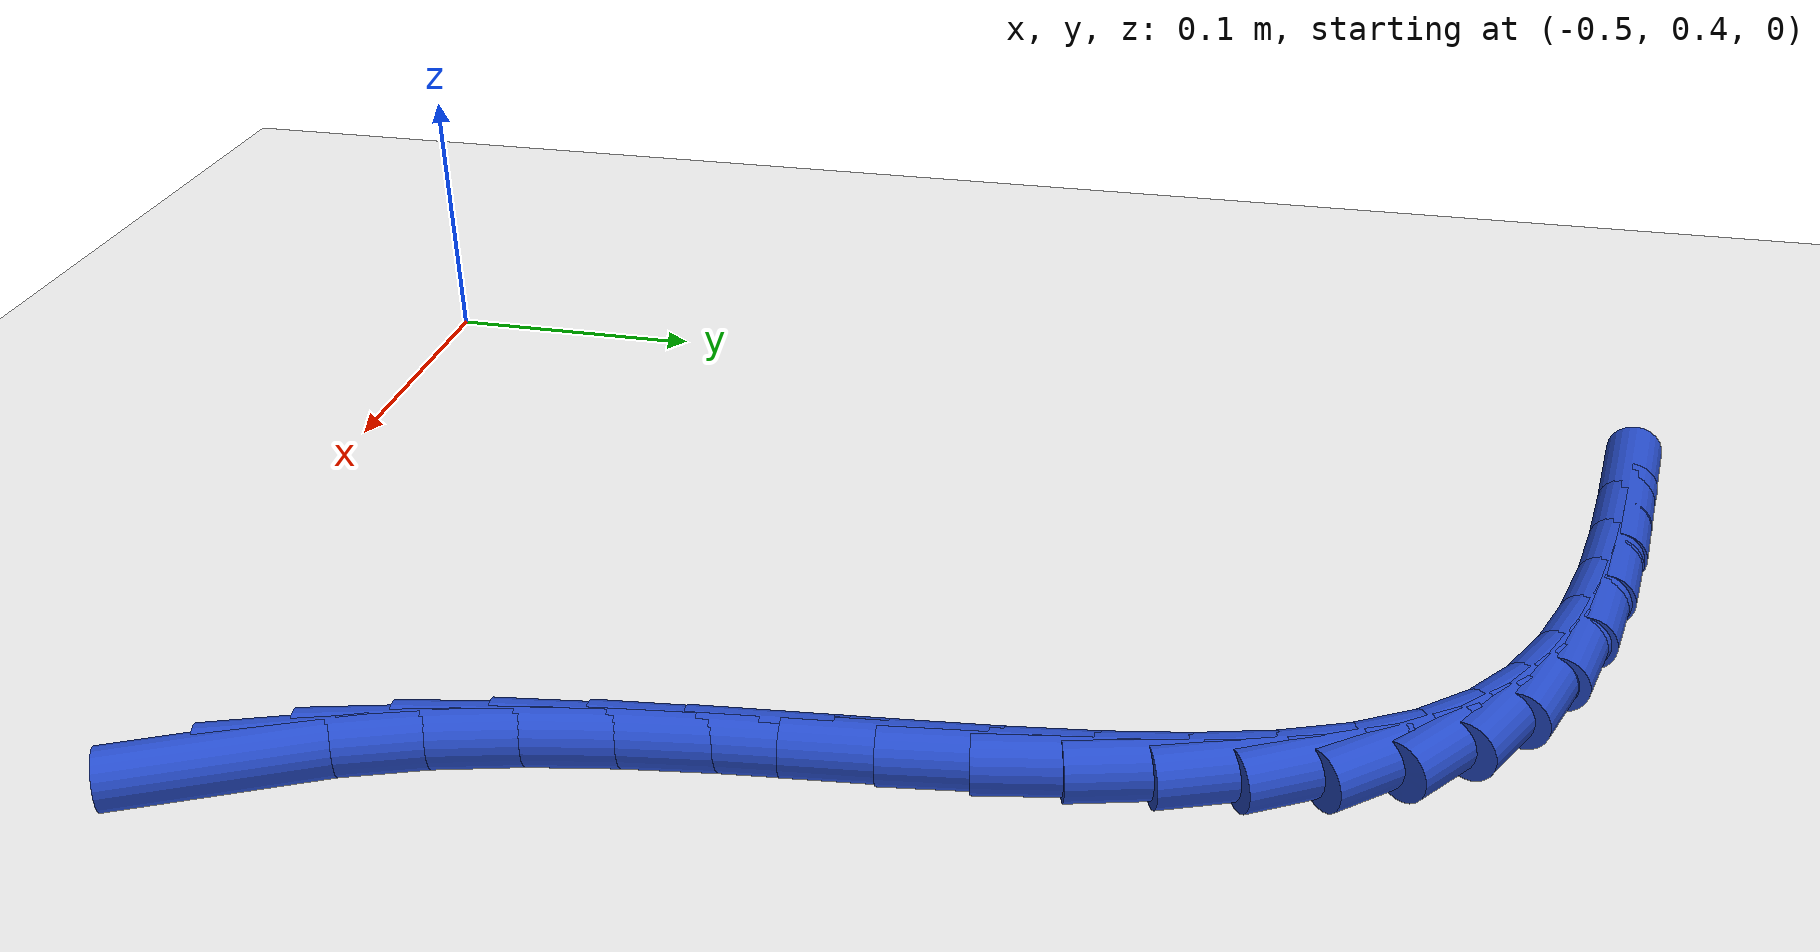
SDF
<sdf version="1.6">
 <world name="default">
  <model name="ground_plane">
   <static>1</static>
   <link name="link">
    <collision name="collision">
     <geometry><plane><normal>0 0 1</normal><size>100 100</size></plane></geometry>
     <surface><friction><ode><mu>100</mu><mu2>50</mu2></ode></friction></surface>
    </collision>
    <visual name="visual">
     <cast_shadows>0</cast_shadows>
     <geometry><plane><normal>0 0 1</normal><size>100 100</size></plane></geometry>
     <material>
      <script><uri>file://media/materials/scripts/gazebo.material</uri><name>Gazebo/WhiteGlow</name></script>
     </material>
    </visual>
   </link>
  </model>
  <model name="line">
   <link name="link_19">
    <pose>-0.1899447937633684 0.46087078451490565 0.01 0 1.57 -1.1296318845937405</pose>
    <collision name="collision">
     <geometry><cylinder><radius>0.01</radius><length>0.08</length></cylinder></geometry>
    </collision>
    <visual name="visual">
     <material>
      <script><name>Gazebo/Blue</name><uri>file://media/materials/scripts/gazebo.material</uri></script>
     </material>
     <geometry><cylinder><radius>0.01</radius><length>0.08</length></cylinder></geometry>
    </visual>
   </link>
   <link name="link_20">
    <pose>-0.20176930439272714 0.48591189994079254 0.01 0 1.57 -1.2389800258527615</pose>
    <collision name="collision">
     <geometry><cylinder><radius>0.01</radius><length>0.08</length></cylinder></geometry>
    </collision>
    <visual name="visual">
     <material>
      <script><name>Gazebo/Blue</name><uri>file://media/materials/scripts/gazebo.material</uri></script>
     </material>
     <geometry><cylinder><radius>0.01</radius><length>0.08</length></cylinder></geometry>
    </visual>
   </link>
   <link name="link_21">
    <pose>-0.2109489104038942 0.5125537769497239 0.01 0 1.57 -1.332416247217029</pose>
    <collision name="collision">
     <geometry><cylinder><radius>0.01</radius><length>0.08</length></cylinder></geometry>
    </collision>
    <visual name="visual">
     <material>
      <script><name>Gazebo/Blue</name><uri>file://media/materials/scripts/gazebo.material</uri></script>
     </material>
     <geometry><cylinder><radius>0.01</radius><length>0.08</length></cylinder></geometry>
    </visual>
   </link>
   <link name="link_22">
    <pose>-0.21775477456855927 0.5405613965239663 0.01 0 1.57 -1.4019504774807319</pose>
    <collision name="collision">
     <geometry><cylinder><radius>0.01</radius><length>0.08</length></cylinder></geometry>
    </collision>
    <visual name="visual">
     <material>
      <script><name>Gazebo/Blue</name><uri>file://media/materials/scripts/gazebo.material</uri></script>
     </material>
     <geometry><cylinder><radius>0.01</radius><length>0.08</length></cylinder></geometry>
    </visual>
   </link>
   <link name="link_23">
    <pose>-0.2226952458456503 0.5695430543763235 0.01 0 1.57 -1.4501635242684614</pose>
    <collision name="collision">
     <geometry><cylinder><radius>0.01</radius><length>0.08</length></cylinder></geometry>
    </collision>
    <visual name="visual">
     <material>
      <script><name>Gazebo/Blue</name><uri>file://media/materials/scripts/gazebo.material</uri></script>
     </material>
     <geometry><cylinder><radius>0.01</radius><length>0.08</length></cylinder></geometry>
    </visual>
   </link>
   <link name="link_24">
    <pose>-0.22627900726049407 0.599106825535232 0.01 0 1.57 -1.4791088921758047</pose>
    <collision name="collision">
     <geometry><cylinder><radius>0.01</radius><length>0.08</length></cylinder></geometry>
    </collision>
    <visual name="visual">
     <material>
      <script><name>Gazebo/Blue</name><uri>file://media/materials/scripts/gazebo.material</uri></script>
     </material>
     <geometry><cylinder><radius>0.01</radius><length>0.08</length></cylinder></geometry>
    </visual>
   </link>
   <link name="link_25">
    <pose>-0.229014741838417 0.6288607850291282 0.01 0 1.57 -1.4898833328625558</pose>
    <collision name="collision">
     <geometry><cylinder><radius>0.01</radius><length>0.08</length></cylinder></geometry>
    </collision>
    <visual name="visual">
     <material>
      <script><name>Gazebo/Blue</name><uri>file://media/materials/scripts/gazebo.material</uri></script>
     </material>
     <geometry><cylinder><radius>0.01</radius><length>0.08</length></cylinder></geometry>
    </visual>
   </link>
   <link name="link_26">
    <pose>-0.2314111326047456 0.658413007886449 0.01 0 1.57 -1.4824270266286634</pose>
    <collision name="collision">
     <geometry><cylinder><radius>0.01</radius><length>0.08</length></cylinder></geometry>
    </collision>
    <visual name="visual">
     <material>
      <script><name>Gazebo/Blue</name><uri>file://media/materials/scripts/gazebo.material</uri></script>
     </material>
     <geometry><cylinder><radius>0.01</radius><length>0.08</length></cylinder></geometry>
    </visual>
   </link>
   <link name="link_27">
    <pose>-0.23397686258480666 0.6873715691356306 0.01 0 1.57 -1.4553517194785355</pose>
    <collision name="collision">
     <geometry><cylinder><radius>0.01</radius><length>0.08</length></cylinder></geometry>
    </collision>
    <visual name="visual">
     <material>
      <script><name>Gazebo/Blue</name><uri>file://media/materials/scripts/gazebo.material</uri></script>
     </material>
     <geometry><cylinder><radius>0.01</radius><length>0.08</length></cylinder></geometry>
    </visual>
   </link>
   <link name="link_28">
    <pose>-0.2372206148039265 0.7153445438051097 0.01 0 1.57 -1.4057251979546244</pose>
    <collision name="collision">
     <geometry><cylinder><radius>0.01</radius><length>0.08</length></cylinder></geometry>
    </collision>
    <visual name="visual">
     <material>
      <script><name>Gazebo/Blue</name><uri>file://media/materials/scripts/gazebo.material</uri></script>
     </material>
     <geometry><cylinder><radius>0.01</radius><length>0.08</length></cylinder></geometry>
    </visual>
   </link>
   <link name="link_29">
    <pose>-0.2416510722874317 0.7419400069233227 0.01 0 1.57 -1.3288779182609405</pose>
    <collision name="collision">
     <geometry><cylinder><radius>0.01</radius><length>0.08</length></cylinder></geometry>
    </collision>
    <visual name="visual">
     <material>
      <script><name>Gazebo/Blue</name><uri>file://media/materials/scripts/gazebo.material</uri></script>
     </material>
     <geometry><cylinder><radius>0.01</radius><length>0.08</length></cylinder></geometry>
    </visual>
   </link>
   <link name="link_30">
    <pose>-0.24777691806064892 0.7667660335187063 0.01 0 1.57 -1.218591786880306</pose>
    <collision name="collision">
     <geometry><cylinder><radius>0.01</radius><length>0.08</length></cylinder></geometry>
    </collision>
    <visual name="visual">
     <material>
      <script><name>Gazebo/Blue</name><uri>file://media/materials/scripts/gazebo.material</uri></script>
     </material>
     <geometry><cylinder><radius>0.01</radius><length>0.08</length></cylinder></geometry>
    </visual>
   </link>
   <link name="link_31">
    <pose>-0.25610683514890464 0.7894306986196973 0.01 0 1.57 -1.0686629468953663</pose>
    <collision name="collision">
     <geometry><cylinder><radius>0.01</radius><length>0.08</length></cylinder></geometry>
    </collision>
    <visual name="visual">
     <material>
      <script><name>Gazebo/Blue</name><uri>file://media/materials/scripts/gazebo.material</uri></script>
     </material>
     <geometry><cylinder><radius>0.01</radius><length>0.08</length></cylinder></geometry>
    </visual>
   </link>
   <link name="link_32">
    <pose>-0.26714950657752545 0.8095420772547315 0.01 0 1.57 -0.8778828394717879</pose>
    <collision name="collision">
     <geometry><cylinder><radius>0.01</radius><length>0.08</length></cylinder></geometry>
    </collision>
    <visual name="visual">
     <material>
      <script><name>Gazebo/Blue</name><uri>file://media/materials/scripts/gazebo.material</uri></script>
     </material>
     <geometry><cylinder><radius>0.01</radius><length>0.08</length></cylinder></geometry>
    </visual>
   </link>
   <link name="link_33">
    <pose>-0.2814066606128743 0.8267142812399378 0.01 0 1.57 -0.6769066921869799</pose>
    <collision name="collision">
     <geometry><cylinder><radius>0.01</radius><length>0.08</length></cylinder></geometry>
    </collision>
    <visual name="visual">
     <material>
      <script><name>Gazebo/Blue</name><uri>file://media/materials/scripts/gazebo.material</uri></script>
     </material>
     <geometry><cylinder><radius>0.01</radius><length>0.08</length></cylinder></geometry>
    </visual>
   </link>
   <link name="link_34">
    <pose>-0.29902377279542647 0.8408706526727773 0.01 0 1.57 -0.5096522520865737</pose>
    <collision name="collision">
     <geometry><cylinder><radius>0.01</radius><length>0.08</length></cylinder></geometry>
    </collision>
    <visual name="visual">
     <material>
      <script><name>Gazebo/Blue</name><uri>file://media/materials/scripts/gazebo.material</uri></script>
     </material>
     <geometry><cylinder><radius>0.01</radius><length>0.08</length></cylinder></geometry>
    </visual>
   </link>
   <link name="link_35">
    <pose>-0.3196266241799483 0.8523856327170312 0.01 0 1.57 -0.3810423490504991</pose>
    <collision name="collision">
     <geometry><cylinder><radius>0.01</radius><length>0.08</length></cylinder></geometry>
    </collision>
    <visual name="visual">
     <material>
      <script><name>Gazebo/Blue</name><uri>file://media/materials/scripts/gazebo.material</uri></script>
     </material>
     <geometry><cylinder><radius>0.01</radius><length>0.08</length></cylinder></geometry>
    </visual>
   </link>
   <link name="link_36">
    <pose>-0.3427998845881352 0.8616693474232053 0.01 0 1.57 -0.2865260909454239</pose>
    <collision name="collision">
     <geometry><cylinder><radius>0.01</radius><length>0.08</length></cylinder></geometry>
    </collision>
    <visual name="visual">
     <material>
      <script><name>Gazebo/Blue</name><uri>file://media/materials/scripts/gazebo.material</uri></script>
     </material>
     <geometry><cylinder><radius>0.01</radius><length>0.08</length></cylinder></geometry>
    </visual>
   </link>
   <link name="link_37">
    <pose>-0.3681282238416823 0.8691319228418062 0.01 0 1.57 -0.2199511641202159</pose>
    <collision name="collision">
     <geometry><cylinder><radius>0.01</radius><length>0.08</length></cylinder></geometry>
    </collision>
    <visual name="visual">
     <material>
      <script><name>Gazebo/Blue</name><uri>file://media/materials/scripts/gazebo.material</uri></script>
     </material>
     <geometry><cylinder><radius>0.01</radius><length>0.08</length></cylinder></geometry>
    </visual>
   </link>
   <link name="link_38">
    <pose>-0.3951963117622856 0.8751834850233399 0.01 0 1.57 -0.17604608693882437</pose>
    <collision name="collision">
     <geometry><cylinder><radius>0.01</radius><length>0.08</length></cylinder></geometry>
    </collision>
    <visual name="visual">
     <material>
      <script><name>Gazebo/Blue</name><uri>file://media/materials/scripts/gazebo.material</uri></script>
     </material>
     <geometry><cylinder><radius>0.01</radius><length>0.08</length></cylinder></geometry>
    </visual>
   </link>
   <link name="link_39">
    <pose>-0.42358881817164007 0.8802341600183119 0.01 0 1.57 -0.15104788204637618</pose>
    <collision name="collision">
     <geometry><cylinder><radius>0.01</radius><length>0.08</length></cylinder></geometry>
    </collision>
    <visual name="visual">
     <material>
      <script><name>Gazebo/Blue</name><uri>file://media/materials/scripts/gazebo.material</uri></script>
     </material>
     <geometry><cylinder><radius>0.01</radius><length>0.08</length></cylinder></geometry>
    </visual>
   </link>
  </model>
 </world>
</sdf>
